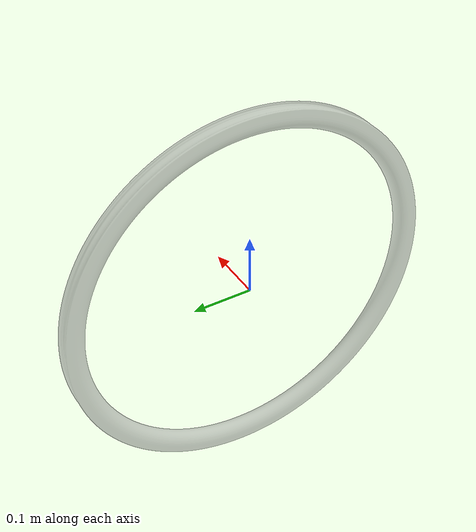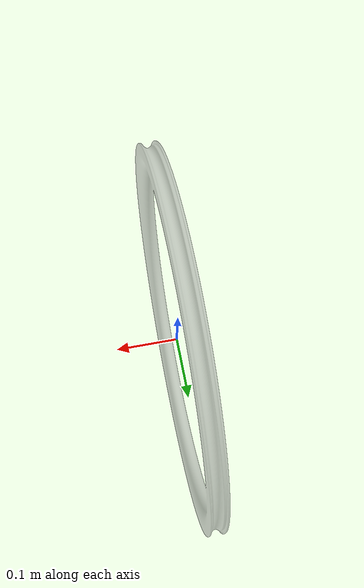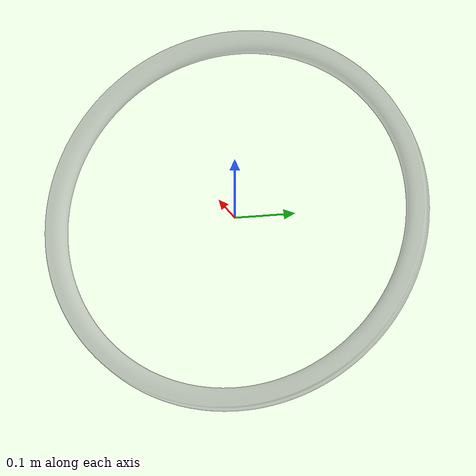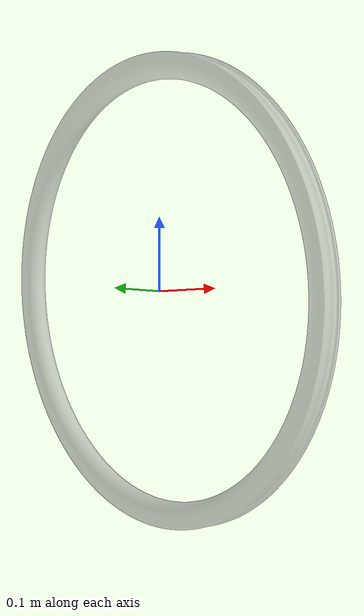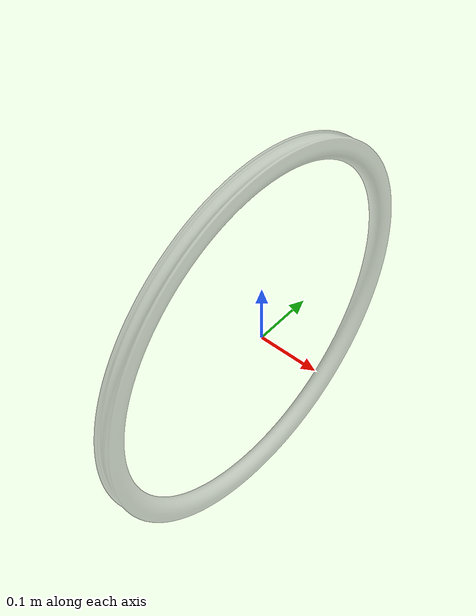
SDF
<?xml version='1.0'?>
<sdf version='1.6'>
  <model name='ar35'>
    <link name='ring'>
      <pose>0 0 0 0 0 0</pose>
      <self_collide>0</self_collide>
      <inertial>
        <mass>1</mass>
        <pose frame=''>0 0 0 0 0 0</pose>
        <inertia>
          <ixx>1</ixx>
          <ixy>0</ixy>
          <ixz>0</ixz>
          <iyy>1</iyy>
          <iyz>0</iyz>
          <izz>1</izz>
        </inertia>
      </inertial>
      <visual name='ring_visual'>
        <geometry>
          <mesh>
            <uri>model://ar35/meshes/AR35.stl</uri>
            <scale>0.001 0.001 0.001</scale>
          </mesh>
        </geometry>
        <pose frame=''>0 0 0 0 0 0</pose>
        <material>
          <script>
            <name>Gazebo/GreyTransparent</name>
            <uri>__default__</uri>
          </script>
          <shader type='pixel'>
            <normal_map>__default__</normal_map>
          </shader>
          <ambient>0.5 0.5 0.5 1</ambient>
          <diffuse>0.5 0.5 0.5 1</diffuse>
          <specular>0 0 0 1</specular>
          <emissive>0 0 0 1</emissive>
        </material>
        <transparency>0</transparency>
        <cast_shadows>1</cast_shadows>
      </visual>
      <collision name='ring_collision'>
        <laser_retro>0</laser_retro>
        <max_contacts>10</max_contacts>
        <pose>0 0 0 0 0 0</pose>
        <geometry>

          <mesh>
            <uri>model://ar35/meshes/AR35.stl</uri>
            <scale>0.001 0.001 0.001</scale>
          </mesh>
        </geometry>
        <surface>
          <friction>
            <ode>
              <mu>1</mu>
              <mu2>1</mu2>
              <fdir1>0 0 0</fdir1>
              <slip1>0.1</slip1>
              <slip2>0.1</slip2>
            </ode>
            <torsional>
              <coefficient>1</coefficient>
              <patch_radius>0</patch_radius>
              <surface_radius>0</surface_radius>
              <use_patch_radius>1</use_patch_radius>
              <ode>
                <slip>0</slip>
              </ode>
            </torsional>
          </friction>
          <bounce>
            <restitution_coefficient>0</restitution_coefficient>
            <threshold>1e+06</threshold>
          </bounce>
          <contact>
            <collide_without_contact>0</collide_without_contact>
            <collide_without_contact_bitmask>1</collide_without_contact_bitmask>
            <collide_bitmask>1</collide_bitmask>
            <ode>
              <soft_cfm>0</soft_cfm>
              <soft_erp>0.2</soft_erp>
              <kp>1e+13</kp>
              <kd>1</kd>
              <max_vel>0.01</max_vel>
              <min_depth>0</min_depth>
            </ode>
            <bullet>
              <split_impulse>1</split_impulse>
              <split_impulse_penetration_threshold>-0.01</split_impulse_penetration_threshold>
              <soft_cfm>0</soft_cfm>
              <soft_erp>0.2</soft_erp>
              <kp>1e+13</kp>
              <kd>1</kd>
            </bullet>
          </contact>
        </surface>
      </collision>
    </link>
  </model>
</sdf>
